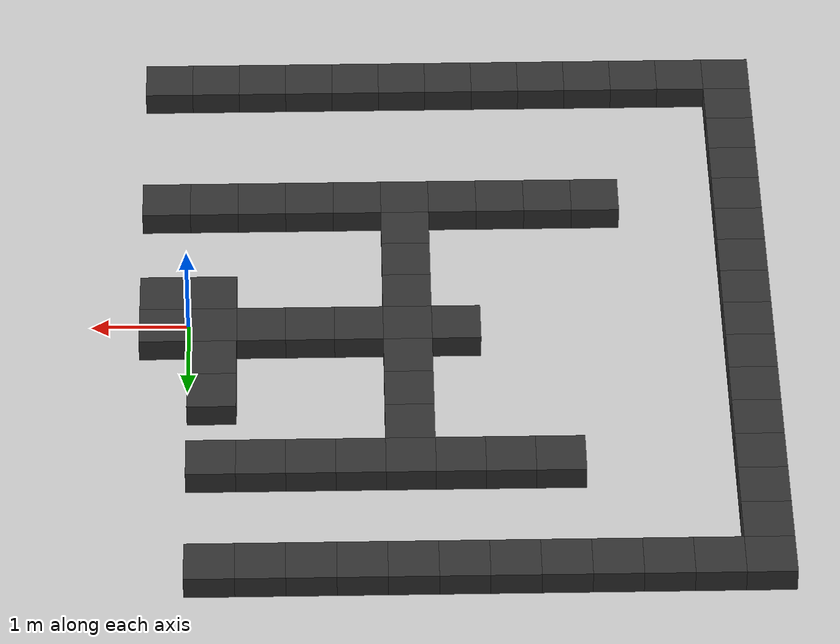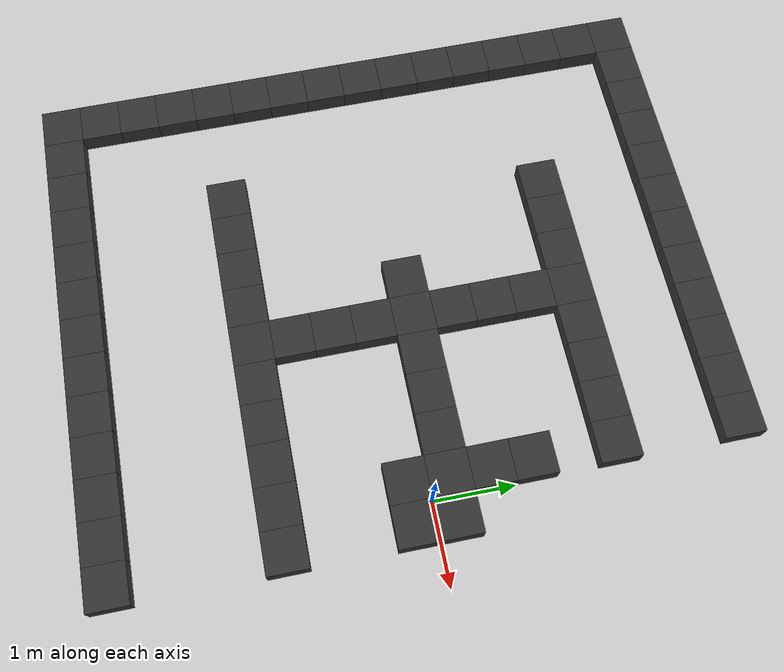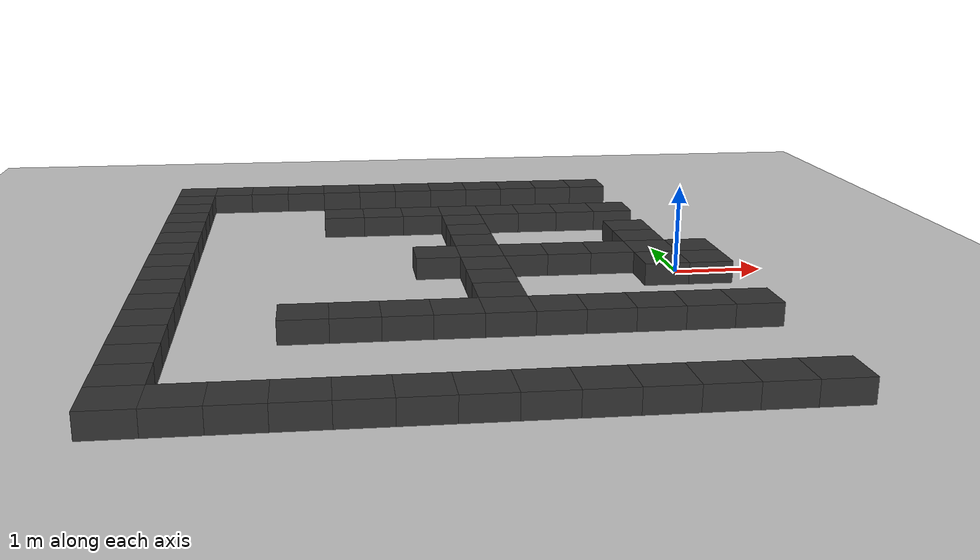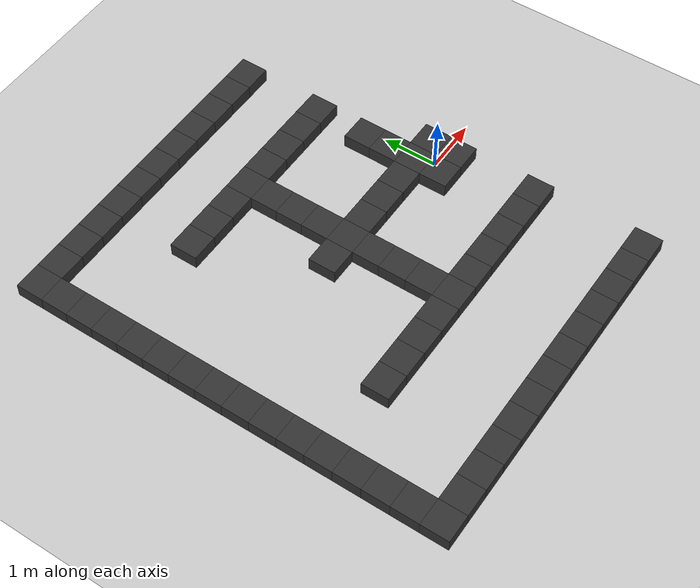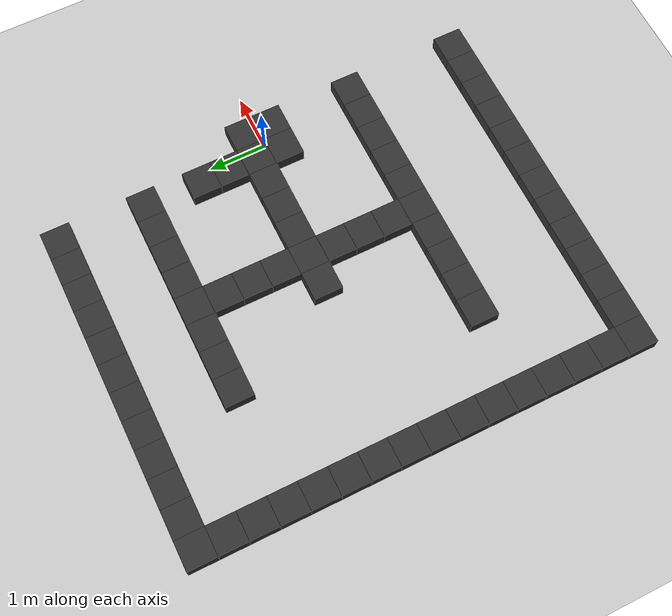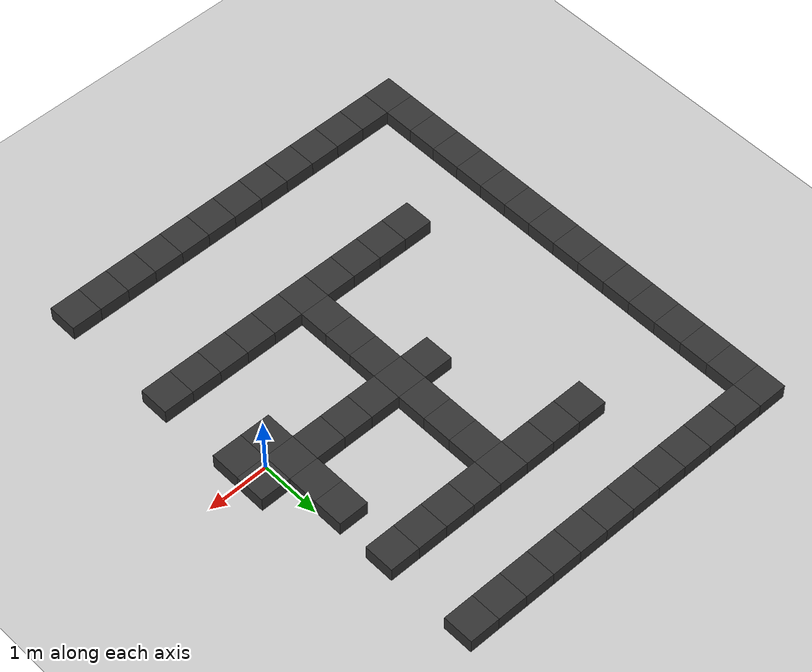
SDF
<sdf version="1.7">
 <world name="default">
  <model name="ground">
   <static>true</static>
   <link name="link">
    <collision name="col">
     <geometry><plane><normal>0 0 1</normal><size>200 200</size></plane></geometry>
    </collision>
    <visual name="vis">
     <geometry><plane><normal>0 0 1</normal><size>200 200</size></plane></geometry>
     <material>
      <ambient>0.25 0.25 0.25 1</ambient>
      <diffuse>0.80 0.80 0.80 1</diffuse>
      <specular>0.05 0.05 0.05 1</specular>
     </material>
    </visual>
   </link>
  </model>
  <model name="w_0_0">
   <static>true</static>
   <pose>-5.750 -3.750 0.125 0 0 0</pose>
   <link name="link">
    <collision name="col"><geometry><box><size>0.500 0.500 0.250</size></box></geometry></collision>
    <visual name="vis">
     <geometry><box><size>0.500 0.500 0.250</size></box></geometry>
     <material><ambient>0.2 0.2 0.2 1.0</ambient></material>
    </visual>
   </link>
  </model>
  <model name="w_0_1">
   <static>true</static>
   <pose>-5.250 -3.750 0.125 0 0 0</pose>
   <link name="link">
    <collision name="col"><geometry><box><size>0.500 0.500 0.250</size></box></geometry></collision>
    <visual name="vis">
     <geometry><box><size>0.500 0.500 0.250</size></box></geometry>
     <material><ambient>0.2 0.2 0.2 1.0</ambient></material>
    </visual>
   </link>
  </model>
  <model name="w_0_2">
   <static>true</static>
   <pose>-4.750 -3.750 0.125 0 0 0</pose>
   <link name="link">
    <collision name="col"><geometry><box><size>0.500 0.500 0.250</size></box></geometry></collision>
    <visual name="vis">
     <geometry><box><size>0.500 0.500 0.250</size></box></geometry>
     <material><ambient>0.2 0.2 0.2 1.0</ambient></material>
    </visual>
   </link>
  </model>
  <model name="w_0_3">
   <static>true</static>
   <pose>-4.250 -3.750 0.125 0 0 0</pose>
   <link name="link">
    <collision name="col"><geometry><box><size>0.500 0.500 0.250</size></box></geometry></collision>
    <visual name="vis">
     <geometry><box><size>0.500 0.500 0.250</size></box></geometry>
     <material><ambient>0.2 0.2 0.2 1.0</ambient></material>
    </visual>
   </link>
  </model>
  <model name="w_0_4">
   <static>true</static>
   <pose>-3.750 -3.750 0.125 0 0 0</pose>
   <link name="link">
    <collision name="col"><geometry><box><size>0.500 0.500 0.250</size></box></geometry></collision>
    <visual name="vis">
     <geometry><box><size>0.500 0.500 0.250</size></box></geometry>
     <material><ambient>0.2 0.2 0.2 1.0</ambient></material>
    </visual>
   </link>
  </model>
  <model name="w_0_5">
   <static>true</static>
   <pose>-3.250 -3.750 0.125 0 0 0</pose>
   <link name="link">
    <collision name="col"><geometry><box><size>0.500 0.500 0.250</size></box></geometry></collision>
    <visual name="vis">
     <geometry><box><size>0.500 0.500 0.250</size></box></geometry>
     <material><ambient>0.2 0.2 0.2 1.0</ambient></material>
    </visual>
   </link>
  </model>
  <model name="w_0_6">
   <static>true</static>
   <pose>-2.750 -3.750 0.125 0 0 0</pose>
   <link name="link">
    <collision name="col"><geometry><box><size>0.500 0.500 0.250</size></box></geometry></collision>
    <visual name="vis">
     <geometry><box><size>0.500 0.500 0.250</size></box></geometry>
     <material><ambient>0.2 0.2 0.2 1.0</ambient></material>
    </visual>
   </link>
  </model>
  <model name="w_0_7">
   <static>true</static>
   <pose>-2.250 -3.750 0.125 0 0 0</pose>
   <link name="link">
    <collision name="col"><geometry><box><size>0.500 0.500 0.250</size></box></geometry></collision>
    <visual name="vis">
     <geometry><box><size>0.500 0.500 0.250</size></box></geometry>
     <material><ambient>0.2 0.2 0.2 1.0</ambient></material>
    </visual>
   </link>
  </model>
  <model name="w_0_8">
   <static>true</static>
   <pose>-1.750 -3.750 0.125 0 0 0</pose>
   <link name="link">
    <collision name="col"><geometry><box><size>0.500 0.500 0.250</size></box></geometry></collision>
    <visual name="vis">
     <geometry><box><size>0.500 0.500 0.250</size></box></geometry>
     <material><ambient>0.2 0.2 0.2 1.0</ambient></material>
    </visual>
   </link>
  </model>
  <model name="w_0_9">
   <static>true</static>
   <pose>-1.250 -3.750 0.125 0 0 0</pose>
   <link name="link">
    <collision name="col"><geometry><box><size>0.500 0.500 0.250</size></box></geometry></collision>
    <visual name="vis">
     <geometry><box><size>0.500 0.500 0.250</size></box></geometry>
     <material><ambient>0.2 0.2 0.2 1.0</ambient></material>
    </visual>
   </link>
  </model>
  <model name="w_0_10">
   <static>true</static>
   <pose>-0.750 -3.750 0.125 0 0 0</pose>
   <link name="link">
    <collision name="col"><geometry><box><size>0.500 0.500 0.250</size></box></geometry></collision>
    <visual name="vis">
     <geometry><box><size>0.500 0.500 0.250</size></box></geometry>
     <material><ambient>0.2 0.2 0.2 1.0</ambient></material>
    </visual>
   </link>
  </model>
  <model name="w_0_11">
   <static>true</static>
   <pose>-0.250 -3.750 0.125 0 0 0</pose>
   <link name="link">
    <collision name="col"><geometry><box><size>0.500 0.500 0.250</size></box></geometry></collision>
    <visual name="vis">
     <geometry><box><size>0.500 0.500 0.250</size></box></geometry>
     <material><ambient>0.2 0.2 0.2 1.0</ambient></material>
    </visual>
   </link>
  </model>
  <model name="w_0_12">
   <static>true</static>
   <pose>0.250 -3.750 0.125 0 0 0</pose>
   <link name="link">
    <collision name="col"><geometry><box><size>0.500 0.500 0.250</size></box></geometry></collision>
    <visual name="vis">
     <geometry><box><size>0.500 0.500 0.250</size></box></geometry>
     <material><ambient>0.2 0.2 0.2 1.0</ambient></material>
    </visual>
   </link>
  </model>
  <model name="w_1_0">
   <static>true</static>
   <pose>-5.750 -3.250 0.125 0 0 0</pose>
   <link name="link">
    <collision name="col"><geometry><box><size>0.500 0.500 0.250</size></box></geometry></collision>
    <visual name="vis">
     <geometry><box><size>0.500 0.500 0.250</size></box></geometry>
     <material><ambient>0.2 0.2 0.2 1.0</ambient></material>
    </visual>
   </link>
  </model>
  <model name="w_2_0">
   <static>true</static>
   <pose>-5.750 -2.750 0.125 0 0 0</pose>
   <link name="link">
    <collision name="col"><geometry><box><size>0.500 0.500 0.250</size></box></geometry></collision>
    <visual name="vis">
     <geometry><box><size>0.500 0.500 0.250</size></box></geometry>
     <material><ambient>0.2 0.2 0.2 1.0</ambient></material>
    </visual>
   </link>
  </model>
  <model name="w_3_0">
   <static>true</static>
   <pose>-5.750 -2.250 0.125 0 0 0</pose>
   <link name="link">
    <collision name="col"><geometry><box><size>0.500 0.500 0.250</size></box></geometry></collision>
    <visual name="vis">
     <geometry><box><size>0.500 0.500 0.250</size></box></geometry>
     <material><ambient>0.2 0.2 0.2 1.0</ambient></material>
    </visual>
   </link>
  </model>
  <model name="w_4_0">
   <static>true</static>
   <pose>-5.750 -1.750 0.125 0 0 0</pose>
   <link name="link">
    <collision name="col"><geometry><box><size>0.500 0.500 0.250</size></box></geometry></collision>
    <visual name="vis">
     <geometry><box><size>0.500 0.500 0.250</size></box></geometry>
     <material><ambient>0.2 0.2 0.2 1.0</ambient></material>
    </visual>
   </link>
  </model>
  <model name="w_4_3">
   <static>true</static>
   <pose>-4.250 -1.750 0.125 0 0 0</pose>
   <link name="link">
    <collision name="col"><geometry><box><size>0.500 0.500 0.250</size></box></geometry></collision>
    <visual name="vis">
     <geometry><box><size>0.500 0.500 0.250</size></box></geometry>
     <material><ambient>0.2 0.2 0.2 1.0</ambient></material>
    </visual>
   </link>
  </model>
  <model name="w_4_4">
   <static>true</static>
   <pose>-3.750 -1.750 0.125 0 0 0</pose>
   <link name="link">
    <collision name="col"><geometry><box><size>0.500 0.500 0.250</size></box></geometry></collision>
    <visual name="vis">
     <geometry><box><size>0.500 0.500 0.250</size></box></geometry>
     <material><ambient>0.2 0.2 0.2 1.0</ambient></material>
    </visual>
   </link>
  </model>
  <model name="w_4_5">
   <static>true</static>
   <pose>-3.250 -1.750 0.125 0 0 0</pose>
   <link name="link">
    <collision name="col"><geometry><box><size>0.500 0.500 0.250</size></box></geometry></collision>
    <visual name="vis">
     <geometry><box><size>0.500 0.500 0.250</size></box></geometry>
     <material><ambient>0.2 0.2 0.2 1.0</ambient></material>
    </visual>
   </link>
  </model>
  <model name="w_4_6">
   <static>true</static>
   <pose>-2.750 -1.750 0.125 0 0 0</pose>
   <link name="link">
    <collision name="col"><geometry><box><size>0.500 0.500 0.250</size></box></geometry></collision>
    <visual name="vis">
     <geometry><box><size>0.500 0.500 0.250</size></box></geometry>
     <material><ambient>0.2 0.2 0.2 1.0</ambient></material>
    </visual>
   </link>
  </model>
  <model name="w_4_7">
   <static>true</static>
   <pose>-2.250 -1.750 0.125 0 0 0</pose>
   <link name="link">
    <collision name="col"><geometry><box><size>0.500 0.500 0.250</size></box></geometry></collision>
    <visual name="vis">
     <geometry><box><size>0.500 0.500 0.250</size></box></geometry>
     <material><ambient>0.2 0.2 0.2 1.0</ambient></material>
    </visual>
   </link>
  </model>
  <model name="w_4_8">
   <static>true</static>
   <pose>-1.750 -1.750 0.125 0 0 0</pose>
   <link name="link">
    <collision name="col"><geometry><box><size>0.500 0.500 0.250</size></box></geometry></collision>
    <visual name="vis">
     <geometry><box><size>0.500 0.500 0.250</size></box></geometry>
     <material><ambient>0.2 0.2 0.2 1.0</ambient></material>
    </visual>
   </link>
  </model>
  <model name="w_4_9">
   <static>true</static>
   <pose>-1.250 -1.750 0.125 0 0 0</pose>
   <link name="link">
    <collision name="col"><geometry><box><size>0.500 0.500 0.250</size></box></geometry></collision>
    <visual name="vis">
     <geometry><box><size>0.500 0.500 0.250</size></box></geometry>
     <material><ambient>0.2 0.2 0.2 1.0</ambient></material>
    </visual>
   </link>
  </model>
  <model name="w_4_10">
   <static>true</static>
   <pose>-0.750 -1.750 0.125 0 0 0</pose>
   <link name="link">
    <collision name="col"><geometry><box><size>0.500 0.500 0.250</size></box></geometry></collision>
    <visual name="vis">
     <geometry><box><size>0.500 0.500 0.250</size></box></geometry>
     <material><ambient>0.2 0.2 0.2 1.0</ambient></material>
    </visual>
   </link>
  </model>
  <model name="w_4_11">
   <static>true</static>
   <pose>-0.250 -1.750 0.125 0 0 0</pose>
   <link name="link">
    <collision name="col"><geometry><box><size>0.500 0.500 0.250</size></box></geometry></collision>
    <visual name="vis">
     <geometry><box><size>0.500 0.500 0.250</size></box></geometry>
     <material><ambient>0.2 0.2 0.2 1.0</ambient></material>
    </visual>
   </link>
  </model>
  <model name="w_4_12">
   <static>true</static>
   <pose>0.250 -1.750 0.125 0 0 0</pose>
   <link name="link">
    <collision name="col"><geometry><box><size>0.500 0.500 0.250</size></box></geometry></collision>
    <visual name="vis">
     <geometry><box><size>0.500 0.500 0.250</size></box></geometry>
     <material><ambient>0.2 0.2 0.2 1.0</ambient></material>
    </visual>
   </link>
  </model>
  <model name="w_5_0">
   <static>true</static>
   <pose>-5.750 -1.250 0.125 0 0 0</pose>
   <link name="link">
    <collision name="col"><geometry><box><size>0.500 0.500 0.250</size></box></geometry></collision>
    <visual name="vis">
     <geometry><box><size>0.500 0.500 0.250</size></box></geometry>
     <material><ambient>0.2 0.2 0.2 1.0</ambient></material>
    </visual>
   </link>
  </model>
  <model name="w_5_7">
   <static>true</static>
   <pose>-2.250 -1.250 0.125 0 0 0</pose>
   <link name="link">
    <collision name="col"><geometry><box><size>0.500 0.500 0.250</size></box></geometry></collision>
    <visual name="vis">
     <geometry><box><size>0.500 0.500 0.250</size></box></geometry>
     <material><ambient>0.2 0.2 0.2 1.0</ambient></material>
    </visual>
   </link>
  </model>
  <model name="w_6_0">
   <static>true</static>
   <pose>-5.750 -0.750 0.125 0 0 0</pose>
   <link name="link">
    <collision name="col"><geometry><box><size>0.500 0.500 0.250</size></box></geometry></collision>
    <visual name="vis">
     <geometry><box><size>0.500 0.500 0.250</size></box></geometry>
     <material><ambient>0.2 0.2 0.2 1.0</ambient></material>
    </visual>
   </link>
  </model>
  <model name="w_6_7">
   <static>true</static>
   <pose>-2.250 -0.750 0.125 0 0 0</pose>
   <link name="link">
    <collision name="col"><geometry><box><size>0.500 0.500 0.250</size></box></geometry></collision>
    <visual name="vis">
     <geometry><box><size>0.500 0.500 0.250</size></box></geometry>
     <material><ambient>0.2 0.2 0.2 1.0</ambient></material>
    </visual>
   </link>
  </model>
  <model name="w_7_0">
   <static>true</static>
   <pose>-5.750 -0.250 0.125 0 0 0</pose>
   <link name="link">
    <collision name="col"><geometry><box><size>0.500 0.500 0.250</size></box></geometry></collision>
    <visual name="vis">
     <geometry><box><size>0.500 0.500 0.250</size></box></geometry>
     <material><ambient>0.2 0.2 0.2 1.0</ambient></material>
    </visual>
   </link>
  </model>
  <model name="w_7_7">
   <static>true</static>
   <pose>-2.250 -0.250 0.125 0 0 0</pose>
   <link name="link">
    <collision name="col"><geometry><box><size>0.500 0.500 0.250</size></box></geometry></collision>
    <visual name="vis">
     <geometry><box><size>0.500 0.500 0.250</size></box></geometry>
     <material><ambient>0.2 0.2 0.2 1.0</ambient></material>
    </visual>
   </link>
  </model>
  <model name="w_7_11">
   <static>true</static>
   <pose>-0.250 -0.250 0.125 0 0 0</pose>
   <link name="link">
    <collision name="col"><geometry><box><size>0.500 0.500 0.250</size></box></geometry></collision>
    <visual name="vis">
     <geometry><box><size>0.500 0.500 0.250</size></box></geometry>
     <material><ambient>0.2 0.2 0.2 1.0</ambient></material>
    </visual>
   </link>
  </model>
  <model name="w_7_12">
   <static>true</static>
   <pose>0.250 -0.250 0.125 0 0 0</pose>
   <link name="link">
    <collision name="col"><geometry><box><size>0.500 0.500 0.250</size></box></geometry></collision>
    <visual name="vis">
     <geometry><box><size>0.500 0.500 0.250</size></box></geometry>
     <material><ambient>0.2 0.2 0.2 1.0</ambient></material>
    </visual>
   </link>
  </model>
  <model name="w_8_0">
   <static>true</static>
   <pose>-5.750 0.250 0.125 0 0 0</pose>
   <link name="link">
    <collision name="col"><geometry><box><size>0.500 0.500 0.250</size></box></geometry></collision>
    <visual name="vis">
     <geometry><box><size>0.500 0.500 0.250</size></box></geometry>
     <material><ambient>0.2 0.2 0.2 1.0</ambient></material>
    </visual>
   </link>
  </model>
  <model name="w_8_6">
   <static>true</static>
   <pose>-2.750 0.250 0.125 0 0 0</pose>
   <link name="link">
    <collision name="col"><geometry><box><size>0.500 0.500 0.250</size></box></geometry></collision>
    <visual name="vis">
     <geometry><box><size>0.500 0.500 0.250</size></box></geometry>
     <material><ambient>0.2 0.2 0.2 1.0</ambient></material>
    </visual>
   </link>
  </model>
  <model name="w_8_7">
   <static>true</static>
   <pose>-2.250 0.250 0.125 0 0 0</pose>
   <link name="link">
    <collision name="col"><geometry><box><size>0.500 0.500 0.250</size></box></geometry></collision>
    <visual name="vis">
     <geometry><box><size>0.500 0.500 0.250</size></box></geometry>
     <material><ambient>0.2 0.2 0.2 1.0</ambient></material>
    </visual>
   </link>
  </model>
  <model name="w_8_8">
   <static>true</static>
   <pose>-1.750 0.250 0.125 0 0 0</pose>
   <link name="link">
    <collision name="col"><geometry><box><size>0.500 0.500 0.250</size></box></geometry></collision>
    <visual name="vis">
     <geometry><box><size>0.500 0.500 0.250</size></box></geometry>
     <material><ambient>0.2 0.2 0.2 1.0</ambient></material>
    </visual>
   </link>
  </model>
  <model name="w_8_9">
   <static>true</static>
   <pose>-1.250 0.250 0.125 0 0 0</pose>
   <link name="link">
    <collision name="col"><geometry><box><size>0.500 0.500 0.250</size></box></geometry></collision>
    <visual name="vis">
     <geometry><box><size>0.500 0.500 0.250</size></box></geometry>
     <material><ambient>0.2 0.2 0.2 1.0</ambient></material>
    </visual>
   </link>
  </model>
  <model name="w_8_10">
   <static>true</static>
   <pose>-0.750 0.250 0.125 0 0 0</pose>
   <link name="link">
    <collision name="col"><geometry><box><size>0.500 0.500 0.250</size></box></geometry></collision>
    <visual name="vis">
     <geometry><box><size>0.500 0.500 0.250</size></box></geometry>
     <material><ambient>0.2 0.2 0.2 1.0</ambient></material>
    </visual>
   </link>
  </model>
  <model name="w_8_11">
   <static>true</static>
   <pose>-0.250 0.250 0.125 0 0 0</pose>
   <link name="link">
    <collision name="col"><geometry><box><size>0.500 0.500 0.250</size></box></geometry></collision>
    <visual name="vis">
     <geometry><box><size>0.500 0.500 0.250</size></box></geometry>
     <material><ambient>0.2 0.2 0.2 1.0</ambient></material>
    </visual>
   </link>
  </model>
  <model name="w_8_12">
   <static>true</static>
   <pose>0.250 0.250 0.125 0 0 0</pose>
   <link name="link">
    <collision name="col"><geometry><box><size>0.500 0.500 0.250</size></box></geometry></collision>
    <visual name="vis">
     <geometry><box><size>0.500 0.500 0.250</size></box></geometry>
     <material><ambient>0.2 0.2 0.2 1.0</ambient></material>
    </visual>
   </link>
  </model>
  <model name="w_9_0">
   <static>true</static>
   <pose>-5.750 0.750 0.125 0 0 0</pose>
   <link name="link">
    <collision name="col"><geometry><box><size>0.500 0.500 0.250</size></box></geometry></collision>
    <visual name="vis">
     <geometry><box><size>0.500 0.500 0.250</size></box></geometry>
     <material><ambient>0.2 0.2 0.2 1.0</ambient></material>
    </visual>
   </link>
  </model>
  <model name="w_9_7">
   <static>true</static>
   <pose>-2.250 0.750 0.125 0 0 0</pose>
   <link name="link">
    <collision name="col"><geometry><box><size>0.500 0.500 0.250</size></box></geometry></collision>
    <visual name="vis">
     <geometry><box><size>0.500 0.500 0.250</size></box></geometry>
     <material><ambient>0.2 0.2 0.2 1.0</ambient></material>
    </visual>
   </link>
  </model>
  <model name="w_9_11">
   <static>true</static>
   <pose>-0.250 0.750 0.125 0 0 0</pose>
   <link name="link">
    <collision name="col"><geometry><box><size>0.500 0.500 0.250</size></box></geometry></collision>
    <visual name="vis">
     <geometry><box><size>0.500 0.500 0.250</size></box></geometry>
     <material><ambient>0.2 0.2 0.2 1.0</ambient></material>
    </visual>
   </link>
  </model>
  <model name="w_10_0">
   <static>true</static>
   <pose>-5.750 1.250 0.125 0 0 0</pose>
   <link name="link">
    <collision name="col"><geometry><box><size>0.500 0.500 0.250</size></box></geometry></collision>
    <visual name="vis">
     <geometry><box><size>0.500 0.500 0.250</size></box></geometry>
     <material><ambient>0.2 0.2 0.2 1.0</ambient></material>
    </visual>
   </link>
  </model>
  <model name="w_10_7">
   <static>true</static>
   <pose>-2.250 1.250 0.125 0 0 0</pose>
   <link name="link">
    <collision name="col"><geometry><box><size>0.500 0.500 0.250</size></box></geometry></collision>
    <visual name="vis">
     <geometry><box><size>0.500 0.500 0.250</size></box></geometry>
     <material><ambient>0.2 0.2 0.2 1.0</ambient></material>
    </visual>
   </link>
  </model>
  <model name="w_10_11">
   <static>true</static>
   <pose>-0.250 1.250 0.125 0 0 0</pose>
   <link name="link">
    <collision name="col"><geometry><box><size>0.500 0.500 0.250</size></box></geometry></collision>
    <visual name="vis">
     <geometry><box><size>0.500 0.500 0.250</size></box></geometry>
     <material><ambient>0.2 0.2 0.2 1.0</ambient></material>
    </visual>
   </link>
  </model>
  <model name="w_11_0">
   <static>true</static>
   <pose>-5.750 1.750 0.125 0 0 0</pose>
   <link name="link">
    <collision name="col"><geometry><box><size>0.500 0.500 0.250</size></box></geometry></collision>
    <visual name="vis">
     <geometry><box><size>0.500 0.500 0.250</size></box></geometry>
     <material><ambient>0.2 0.2 0.2 1.0</ambient></material>
    </visual>
   </link>
  </model>
  <model name="w_11_7">
   <static>true</static>
   <pose>-2.250 1.750 0.125 0 0 0</pose>
   <link name="link">
    <collision name="col"><geometry><box><size>0.500 0.500 0.250</size></box></geometry></collision>
    <visual name="vis">
     <geometry><box><size>0.500 0.500 0.250</size></box></geometry>
     <material><ambient>0.2 0.2 0.2 1.0</ambient></material>
    </visual>
   </link>
  </model>
  <model name="w_12_0">
   <static>true</static>
   <pose>-5.750 2.250 0.125 0 0 0</pose>
   <link name="link">
    <collision name="col"><geometry><box><size>0.500 0.500 0.250</size></box></geometry></collision>
    <visual name="vis">
     <geometry><box><size>0.500 0.500 0.250</size></box></geometry>
     <material><ambient>0.2 0.2 0.2 1.0</ambient></material>
    </visual>
   </link>
  </model>
  <model name="w_12_4">
   <static>true</static>
   <pose>-3.750 2.250 0.125 0 0 0</pose>
   <link name="link">
    <collision name="col"><geometry><box><size>0.500 0.500 0.250</size></box></geometry></collision>
    <visual name="vis">
     <geometry><box><size>0.500 0.500 0.250</size></box></geometry>
     <material><ambient>0.2 0.2 0.2 1.0</ambient></material>
    </visual>
   </link>
  </model>
  <model name="w_12_5">
   <static>true</static>
   <pose>-3.250 2.250 0.125 0 0 0</pose>
   <link name="link">
    <collision name="col"><geometry><box><size>0.500 0.500 0.250</size></box></geometry></collision>
    <visual name="vis">
     <geometry><box><size>0.500 0.500 0.250</size></box></geometry>
     <material><ambient>0.2 0.2 0.2 1.0</ambient></material>
    </visual>
   </link>
  </model>
  <model name="w_12_6">
   <static>true</static>
   <pose>-2.750 2.250 0.125 0 0 0</pose>
   <link name="link">
    <collision name="col"><geometry><box><size>0.500 0.500 0.250</size></box></geometry></collision>
    <visual name="vis">
     <geometry><box><size>0.500 0.500 0.250</size></box></geometry>
     <material><ambient>0.2 0.2 0.2 1.0</ambient></material>
    </visual>
   </link>
  </model>
  <model name="w_12_7">
   <static>true</static>
   <pose>-2.250 2.250 0.125 0 0 0</pose>
   <link name="link">
    <collision name="col"><geometry><box><size>0.500 0.500 0.250</size></box></geometry></collision>
    <visual name="vis">
     <geometry><box><size>0.500 0.500 0.250</size></box></geometry>
     <material><ambient>0.2 0.2 0.2 1.0</ambient></material>
    </visual>
   </link>
  </model>
  <model name="w_12_8">
   <static>true</static>
   <pose>-1.750 2.250 0.125 0 0 0</pose>
   <link name="link">
    <collision name="col"><geometry><box><size>0.500 0.500 0.250</size></box></geometry></collision>
    <visual name="vis">
     <geometry><box><size>0.500 0.500 0.250</size></box></geometry>
     <material><ambient>0.2 0.2 0.2 1.0</ambient></material>
    </visual>
   </link>
  </model>
  <model name="w_12_9">
   <static>true</static>
   <pose>-1.250 2.250 0.125 0 0 0</pose>
   <link name="link">
    <collision name="col"><geometry><box><size>0.500 0.500 0.250</size></box></geometry></collision>
    <visual name="vis">
     <geometry><box><size>0.500 0.500 0.250</size></box></geometry>
     <material><ambient>0.2 0.2 0.2 1.0</ambient></material>
    </visual>
   </link>
  </model>
  <model name="w_12_10">
   <static>true</static>
   <pose>-0.750 2.250 0.125 0 0 0</pose>
   <link name="link">
    <collision name="col"><geometry><box><size>0.500 0.500 0.250</size></box></geometry></collision>
    <visual name="vis">
     <geometry><box><size>0.500 0.500 0.250</size></box></geometry>
     <material><ambient>0.2 0.2 0.2 1.0</ambient></material>
    </visual>
   </link>
  </model>
  <model name="w_12_11">
   <static>true</static>
   <pose>-0.250 2.250 0.125 0 0 0</pose>
   <link name="link">
    <collision name="col"><geometry><box><size>0.500 0.500 0.250</size></box></geometry></collision>
    <visual name="vis">
     <geometry><box><size>0.500 0.500 0.250</size></box></geometry>
     <material><ambient>0.2 0.2 0.2 1.0</ambient></material>
    </visual>
   </link>
  </model>
  <model name="w_13_0">
   <static>true</static>
   <pose>-5.750 2.750 0.125 0 0 0</pose>
   <link name="link">
    <collision name="col"><geometry><box><size>0.500 0.500 0.250</size></box></geometry></collision>
    <visual name="vis">
     <geometry><box><size>0.500 0.500 0.250</size></box></geometry>
     <material><ambient>0.2 0.2 0.2 1.0</ambient></material>
    </visual>
   </link>
  </model>
  <model name="w_14_0">
   <static>true</static>
   <pose>-5.750 3.250 0.125 0 0 0</pose>
   <link name="link">
    <collision name="col"><geometry><box><size>0.500 0.500 0.250</size></box></geometry></collision>
    <visual name="vis">
     <geometry><box><size>0.500 0.500 0.250</size></box></geometry>
     <material><ambient>0.2 0.2 0.2 1.0</ambient></material>
    </visual>
   </link>
  </model>
  <model name="w_15_0">
   <static>true</static>
   <pose>-5.750 3.750 0.125 0 0 0</pose>
   <link name="link">
    <collision name="col"><geometry><box><size>0.500 0.500 0.250</size></box></geometry></collision>
    <visual name="vis">
     <geometry><box><size>0.500 0.500 0.250</size></box></geometry>
     <material><ambient>0.2 0.2 0.2 1.0</ambient></material>
    </visual>
   </link>
  </model>
  <model name="w_15_1">
   <static>true</static>
   <pose>-5.250 3.750 0.125 0 0 0</pose>
   <link name="link">
    <collision name="col"><geometry><box><size>0.500 0.500 0.250</size></box></geometry></collision>
    <visual name="vis">
     <geometry><box><size>0.500 0.500 0.250</size></box></geometry>
     <material><ambient>0.2 0.2 0.2 1.0</ambient></material>
    </visual>
   </link>
  </model>
  <model name="w_15_2">
   <static>true</static>
   <pose>-4.750 3.750 0.125 0 0 0</pose>
   <link name="link">
    <collision name="col"><geometry><box><size>0.500 0.500 0.250</size></box></geometry></collision>
    <visual name="vis">
     <geometry><box><size>0.500 0.500 0.250</size></box></geometry>
     <material><ambient>0.2 0.2 0.2 1.0</ambient></material>
    </visual>
   </link>
  </model>
  <model name="w_15_3">
   <static>true</static>
   <pose>-4.250 3.750 0.125 0 0 0</pose>
   <link name="link">
    <collision name="col"><geometry><box><size>0.500 0.500 0.250</size></box></geometry></collision>
    <visual name="vis">
     <geometry><box><size>0.500 0.500 0.250</size></box></geometry>
     <material><ambient>0.2 0.2 0.2 1.0</ambient></material>
    </visual>
   </link>
  </model>
  <model name="w_15_4">
   <static>true</static>
   <pose>-3.750 3.750 0.125 0 0 0</pose>
   <link name="link">
    <collision name="col"><geometry><box><size>0.500 0.500 0.250</size></box></geometry></collision>
    <visual name="vis">
     <geometry><box><size>0.500 0.500 0.250</size></box></geometry>
     <material><ambient>0.2 0.2 0.2 1.0</ambient></material>
    </visual>
   </link>
  </model>
  <model name="w_15_5">
   <static>true</static>
   <pose>-3.250 3.750 0.125 0 0 0</pose>
   <link name="link">
    <collision name="col"><geometry><box><size>0.500 0.500 0.250</size></box></geometry></collision>
    <visual name="vis">
     <geometry><box><size>0.500 0.500 0.250</size></box></geometry>
     <material><ambient>0.2 0.2 0.2 1.0</ambient></material>
    </visual>
   </link>
  </model>
  <model name="w_15_6">
   <static>true</static>
   <pose>-2.750 3.750 0.125 0 0 0</pose>
   <link name="link">
    <collision name="col"><geometry><box><size>0.500 0.500 0.250</size></box></geometry></collision>
    <visual name="vis">
     <geometry><box><size>0.500 0.500 0.250</size></box></geometry>
     <material><ambient>0.2 0.2 0.2 1.0</ambient></material>
    </visual>
   </link>
  </model>
  <model name="w_15_7">
   <static>true</static>
   <pose>-2.250 3.750 0.125 0 0 0</pose>
   <link name="link">
    <collision name="col"><geometry><box><size>0.500 0.500 0.250</size></box></geometry></collision>
    <visual name="vis">
     <geometry><box><size>0.500 0.500 0.250</size></box></geometry>
     <material><ambient>0.2 0.2 0.2 1.0</ambient></material>
    </visual>
   </link>
  </model>
  <model name="w_15_8">
   <static>true</static>
   <pose>-1.750 3.750 0.125 0 0 0</pose>
   <link name="link">
    <collision name="col"><geometry><box><size>0.500 0.500 0.250</size></box></geometry></collision>
    <visual name="vis">
     <geometry><box><size>0.500 0.500 0.250</size></box></geometry>
     <material><ambient>0.2 0.2 0.2 1.0</ambient></material>
    </visual>
   </link>
  </model>
  <model name="w_15_9">
   <static>true</static>
   <pose>-1.250 3.750 0.125 0 0 0</pose>
   <link name="link">
    <collision name="col"><geometry><box><size>0.500 0.500 0.250</size></box></geometry></collision>
    <visual name="vis">
     <geometry><box><size>0.500 0.500 0.250</size></box></geometry>
     <material><ambient>0.2 0.2 0.2 1.0</ambient></material>
    </visual>
   </link>
  </model>
  <model name="w_15_10">
   <static>true</static>
   <pose>-0.750 3.750 0.125 0 0 0</pose>
   <link name="link">
    <collision name="col"><geometry><box><size>0.500 0.500 0.250</size></box></geometry></collision>
    <visual name="vis">
     <geometry><box><size>0.500 0.500 0.250</size></box></geometry>
     <material><ambient>0.2 0.2 0.2 1.0</ambient></material>
    </visual>
   </link>
  </model>
  <model name="w_15_11">
   <static>true</static>
   <pose>-0.250 3.750 0.125 0 0 0</pose>
   <link name="link">
    <collision name="col"><geometry><box><size>0.500 0.500 0.250</size></box></geometry></collision>
    <visual name="vis">
     <geometry><box><size>0.500 0.500 0.250</size></box></geometry>
     <material><ambient>0.2 0.2 0.2 1.0</ambient></material>
    </visual>
   </link>
  </model>
 </world>
</sdf>
